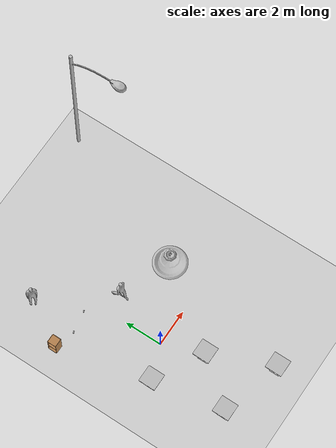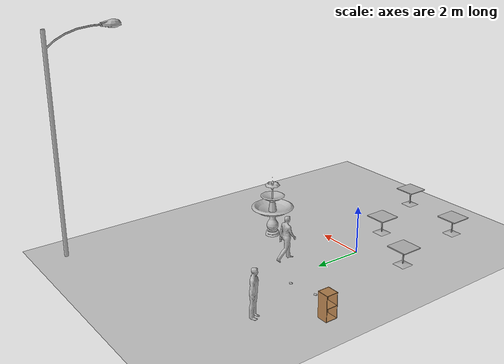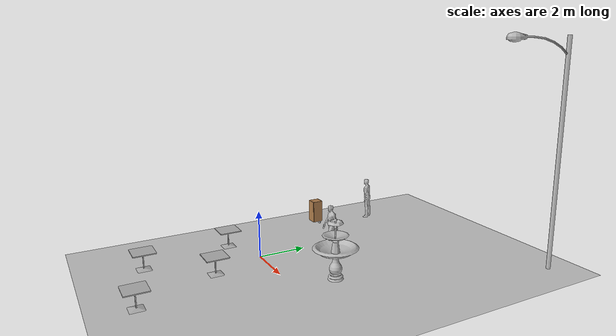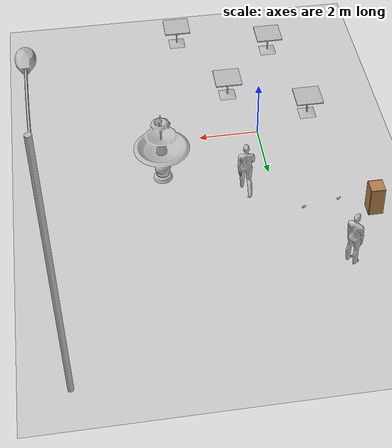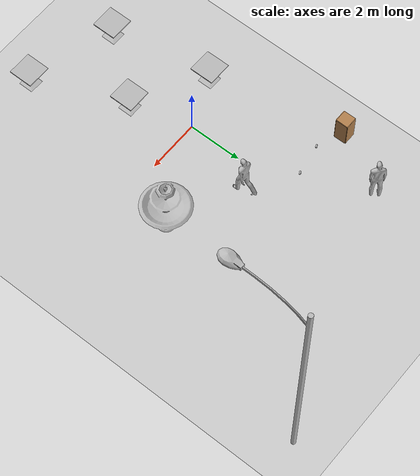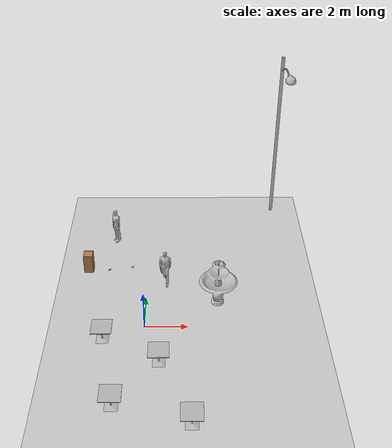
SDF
<sdf version="1.6">
 <world name="default">
  <light name="sun" type="directional">
   <pose>0 0 10 0 -0 0</pose>
   <diffuse>0.8 0.8 0.8 1</diffuse>
   <specular>0.2 0.2 0.2 1</specular>
   <attenuation>
    <range>1000</range>
    <constant>0.9</constant>
    <linear>0.01</linear>
    <quadratic>0.001</quadratic>
   </attenuation>
   <direction>-0.5 0.1 -0.9</direction>
  </light>
  <model name="ground_plane">
   <static>1</static>
   <link name="link">
    <collision name="collision">
     <geometry><plane><normal>0 0 1</normal><size>100 100</size></plane></geometry>
     <surface>
      <contact><collide_bitmask>65535</collide_bitmask></contact>
      <friction><ode><mu>100</mu><mu2>50</mu2></ode></friction>
     </surface>
    </collision>
    <visual name="visual">
     <cast_shadows>0</cast_shadows>
     <geometry><plane><normal>0 0 1</normal><size>100 100</size></plane></geometry>
     <material>
      <script><uri>file://media/materials/scripts/gazebo.material</uri><name>Gazebo/Grey</name></script>
     </material>
    </visual>
   </link>
  </model>
  <gravity>0 0 -9.8</gravity>
  <magnetic_field>6e-06 2.3e-05 -4.2e-05</magnetic_field>
  <atmosphere type="adiabatic"/>
  <physics name="default_physics" default="0" type="ode">
   <max_step_size>0.001</max_step_size>
   <real_time_factor>1</real_time_factor>
   <real_time_update_rate>1000</real_time_update_rate>
  </physics>
  <scene><ambient>0.4 0.4 0.4 1</ambient><background>0.7 0.7 0.7 1</background><shadows>1</shadows></scene>
  <spherical_coordinates>
   <surface_model>EARTH_WGS84</surface_model>
   <latitude_deg>0</latitude_deg>
   <longitude_deg>0</longitude_deg>
   <elevation>0</elevation>
   <heading_deg>0</heading_deg>
  </spherical_coordinates>
  <model name="cafe_table">
   <static>1</static>
   <link name="link">
    <collision name="surface">
     <pose>0 0 0.755 0 -0 0</pose>
     <geometry><box><size>0.913 0.913 0.04</size></box></geometry>
    </collision>
    <collision name="column">
     <pose>0 0 0.37 0 -0 0</pose>
     <geometry><box><size>0.042 0.042 0.74</size></box></geometry>
    </collision>
    <collision name="base">
     <pose>0 0 0.02 0 -0 0</pose>
     <geometry><box><size>0.56 0.56 0.04</size></box></geometry>
    </collision>
    <visual name="visual">
     <geometry><mesh><uri>model://cafe_table/meshes/cafe_table.dae</uri></mesh></geometry>
    </visual>
   </link>
   <pose>-1.15696 -4.4995 0 0 -0 0</pose>
  </model>
  <model name="cafe_table_0">
   <static>1</static>
   <link name="link">
    <collision name="surface">
     <pose>0 0 0.755 0 -0 0</pose>
     <geometry><box><size>0.913 0.913 0.04</size></box></geometry>
    </collision>
    <collision name="column">
     <pose>0 0 0.37 0 -0 0</pose>
     <geometry><box><size>0.042 0.042 0.74</size></box></geometry>
    </collision>
    <collision name="base">
     <pose>0 0 0.02 0 -0 0</pose>
     <geometry><box><size>0.56 0.56 0.04</size></box></geometry>
    </collision>
    <visual name="visual">
     <geometry><mesh><uri>model://cafe_table/meshes/cafe_table.dae</uri></mesh></geometry>
    </visual>
   </link>
   <pose>0.709274 -2.1504 0 0 -0 0</pose>
  </model>
  <model name="cafe_table_1">
   <static>1</static>
   <link name="link">
    <collision name="surface">
     <pose>0 0 0.755 0 -0 0</pose>
     <geometry><box><size>0.913 0.913 0.04</size></box></geometry>
    </collision>
    <collision name="column">
     <pose>0 0 0.37 0 -0 0</pose>
     <geometry><box><size>0.042 0.042 0.74</size></box></geometry>
    </collision>
    <collision name="base">
     <pose>0 0 0.02 0 -0 0</pose>
     <geometry><box><size>0.56 0.56 0.04</size></box></geometry>
    </collision>
    <visual name="visual">
     <geometry><mesh><uri>model://cafe_table/meshes/cafe_table.dae</uri></mesh></geometry>
    </visual>
   </link>
   <pose>2.10526 -5.41865 0 0 -0 0</pose>
  </model>
  <model name="cabinet">
   <static>1</static>
   <link name="cabinet_bottom_plate">
    <inertial>
     <pose>0 0 -1 0 -0 0</pose>
     <inertia><ixx>2.05</ixx><ixy>0</ixy><ixz>0</ixz><iyy>2.05</iyy><iyz>0</iyz><izz>2.05</izz></inertia>
     <mass>25</mass>
    </inertial>
    <collision name="cabinet_bottom_plate_geom">
     <pose>0 0 0.01 0 -0 0</pose>
     <geometry><box><size>0.45 0.45 0.02</size></box></geometry>
    </collision>
    <visual name="cabinet_bottom_plate_geom_visual">
     <pose>0 0 0.01 0 -0 0</pose>
     <geometry><box><size>0.45 0.45 0.02</size></box></geometry>
     <material>
      <script><uri>file://media/materials/scripts/gazebo.material</uri><name>Gazebo/Wood</name></script>
     </material>
    </visual>
    <collision name="cabinet_bottom_plate_geom_cabinet_back_plate">
     <pose>0.235 0 0.51 0 -0 0</pose>
     <geometry><box><size>0.02 0.45 1.02</size></box></geometry>
    </collision>
    <visual name="cabinet_bottom_plate_geom_cabinet_back_plate_visual">
     <pose>0.235 0 0.51 0 -0 0</pose>
     <geometry><box><size>0.02 0.45 1.02</size></box></geometry>
     <material>
      <script><uri>file://media/materials/scripts/gazebo.material</uri><name>Gazebo/Wood</name></script>
     </material>
    </visual>
    <collision name="cabinet_bottom_plate_geom_cabinet_left_plate">
     <pose>0 0.235 0.51 0 -0 0</pose>
     <geometry><box><size>0.45 0.02 1.02</size></box></geometry>
    </collision>
    <visual name="cabinet_bottom_plate_geom_cabinet_left_plate_visual">
     <pose>0 0.235 0.51 0 -0 0</pose>
     <geometry><box><size>0.45 0.02 1.02</size></box></geometry>
     <material>
      <script><uri>file://media/materials/scripts/gazebo.material</uri><name>Gazebo/Wood</name></script>
     </material>
    </visual>
    <collision name="cabinet_bottom_plate_geom_cabinet_middle_plate">
     <pose>0 0 0.51 0 -0 0</pose>
     <geometry><box><size>0.45 0.45 0.02</size></box></geometry>
    </collision>
    <visual name="cabinet_bottom_plate_geom_cabinet_middle_plate_visual">
     <pose>0 0 0.51 0 -0 0</pose>
     <geometry><box><size>0.45 0.45 0.02</size></box></geometry>
     <material>
      <script><uri>file://media/materials/scripts/gazebo.material</uri><name>Gazebo/Wood</name></script>
     </material>
    </visual>
    <collision name="cabinet_bottom_plate_geom_cabinet_right_plate">
     <pose>0 -0.235 0.51 0 -0 0</pose>
     <geometry><box><size>0.45 0.02 1.02</size></box></geometry>
    </collision>
    <visual name="cabinet_bottom_plate_geom_cabinet_right_plate_visual">
     <pose>0 -0.235 0.51 0 -0 0</pose>
     <geometry><box><size>0.45 0.02 1.02</size></box></geometry>
     <material>
      <script><uri>file://media/materials/scripts/gazebo.material</uri><name>Gazebo/Wood</name></script>
     </material>
    </visual>
    <collision name="cabinet_bottom_plate_geom_cabinet_top_plate">
     <pose>0 0 1.01 0 -0 0</pose>
     <geometry><box><size>0.45 0.45 0.02</size></box></geometry>
    </collision>
    <visual name="cabinet_bottom_plate_geom_cabinet_top_plate_visual">
     <pose>0 0 1.01 0 -0 0</pose>
     <geometry><box><size>0.45 0.45 0.02</size></box></geometry>
     <material>
      <script><uri>file://media/materials/scripts/gazebo.material</uri><name>Gazebo/Wood</name></script>
     </material>
    </visual>
   </link>
   <pose>-2.9826 4.17743 0 0 -0 0</pose>
  </model>
  <model name="fountain">
   <static>1</static>
   <link name="link">
    <collision name="collision">
     <geometry><mesh><uri>model://fountain/meshes/fountain.dae</uri></mesh></geometry>
    </collision>
    <visual name="visual">
     <geometry><mesh><uri>model://fountain/meshes/fountain.dae</uri></mesh></geometry>
    </visual>
   </link>
   <pose>3.42378 1.70871 0 0 -0 0</pose>
  </model>
  <model name="person_standing">
   <link name="link">
    <inertial>
     <pose>0 -0.1 0.95 0 -0 0</pose>
     <mass>80</mass>
     <inertia><ixx>24.88</ixx><ixy>0</ixy><ixz>0</ixz><iyy>25.73</iyy><iyz>0</iyz><izz>2.48</izz></inertia>
    </inertial>
    <collision name="bottom">
     <pose>0 -0.1 0.01 0 -0 0</pose>
     <geometry><box><size>0.5 0.35 0.02</size></box></geometry>
    </collision>
    <collision name="person">
     <pose>0 0 0.02 0.04 -0 0</pose>
     <geometry><mesh><uri>model://person_standing/meshes/standing.dae</uri></mesh></geometry>
    </collision>
    <visual name="visual">
     <pose>0 0 0.02 0.04 -0 0</pose>
     <geometry><mesh><uri>model://person_standing/meshes/standing.dae</uri></mesh></geometry>
    </visual>
   </link>
   <pose>-1.65566 6.42965 0.1898 1e-06 1e-06 -0.892378</pose>
  </model>
  <model name="person_walking">
   <link name="link">
    <inertial>
     <pose>0 0 0.95 0 -0 0</pose>
     <mass>80</mass>
     <inertia><ixx>27.82</ixx><ixy>0</ixy><ixz>0</ixz><iyy>24.88</iyy><iyz>0</iyz><izz>4.57</izz></inertia>
    </inertial>
    <collision name="bottom">
     <pose>0 0 0.01 0 -0 0</pose>
     <geometry><box><size>0.35 0.75 0.02</size></box></geometry>
    </collision>
    <collision name="person">
     <pose>0 0 -0.02 0 -0 0</pose>
     <geometry><mesh><uri>model://person_walking/meshes/walking.dae</uri></mesh></geometry>
    </collision>
    <visual name="visual">
     <pose>0 0 -0.02 0 -0 0</pose>
     <geometry><mesh><uri>model://person_walking/meshes/walking.dae</uri></mesh></geometry>
    </visual>
   </link>
   <pose>0.913503 2.95581 0.189801 -1e-06 1e-06 -0.102846</pose>
  </model>
  <model name="Lamp Post">
   <static>1</static>
   <link name="link">
    <collision name="collision">
     <geometry><mesh><uri>model://lamp_post/meshes/lamp_post.dae</uri><scale>3 3 3</scale></mesh></geometry>
    </collision>
    <visual name="visual">
     <geometry><mesh><uri>model://lamp_post/meshes/lamp_post.dae</uri><scale>3 3 3</scale></mesh></geometry>
    </visual>
   </link>
   <pose>6.81745 9.56043 0 0 -0 0</pose>
  </model>
  <model name="cafe_table_2">
   <static>1</static>
   <link name="link">
    <collision name="surface">
     <pose>0 0 0.755 0 -0 0</pose>
     <geometry><box><size>0.913 0.913 0.04</size></box></geometry>
    </collision>
    <collision name="column">
     <pose>0 0 0.37 0 -0 0</pose>
     <geometry><box><size>0.042 0.042 0.74</size></box></geometry>
    </collision>
    <collision name="base">
     <pose>0 0 0.02 0 -0 0</pose>
     <geometry><box><size>0.56 0.56 0.04</size></box></geometry>
    </collision>
    <visual name="visual">
     <geometry><mesh><uri>model://cafe_table/meshes/cafe_table.dae</uri></mesh></geometry>
    </visual>
   </link>
   <pose>-1.85823 -0.741595 0 0 -0 0</pose>
  </model>
  <model name="coke_can">
   <link name="link">
    <inertial>
     <pose>-0.01 -0.012 0.15 0 -0 0</pose>
     <mass>0.39</mass>
     <inertia><ixx>0.00058</ixx><ixy>0</ixy><ixz>0</ixz><iyy>0.00058</iyy><iyz>0</iyz><izz>0.00019</izz></inertia>
    </inertial>
    <collision name="collision">
     <pose>0 0 -0.46 0 -0 0</pose>
     <geometry><mesh><uri>model://coke_can/meshes/coke_can.dae</uri></mesh></geometry>
     <surface>
      <friction><ode><mu>1</mu><mu2>1</mu2></ode></friction>
      <contact><ode><kp>1e+07</kp><kd>1</kd><min_depth>0.001</min_depth><max_vel>0.1</max_vel></ode></contact>
     </surface>
    </collision>
    <visual name="visual">
     <pose>0 0 -0.46 0 -0 0</pose>
     <geometry><mesh><uri>model://coke_can/meshes/coke_can.dae</uri></mesh></geometry>
    </visual>
   </link>
   <pose>-2.10323 3.71648 0.289009 1.55826 -1.27527 -1.06714</pose>
  </model>
  <model name="coke_can_0">
   <link name="link">
    <inertial>
     <pose>-0.01 -0.012 0.15 0 -0 0</pose>
     <mass>0.39</mass>
     <inertia><ixx>0.00058</ixx><ixy>0</ixy><ixz>0</ixz><iyy>0.00058</iyy><iyz>0</iyz><izz>0.00019</izz></inertia>
    </inertial>
    <collision name="collision">
     <pose>0 0 -0.46 0 -0 0</pose>
     <geometry><mesh><uri>model://coke_can/meshes/coke_can.dae</uri></mesh></geometry>
     <surface>
      <friction><ode><mu>1</mu><mu2>1</mu2></ode></friction>
      <contact><ode><kp>1e+07</kp><kd>1</kd><min_depth>0.001</min_depth><max_vel>0.1</max_vel></ode></contact>
     </surface>
    </collision>
    <visual name="visual">
     <pose>0 0 -0.46 0 -0 0</pose>
     <geometry><mesh><uri>model://coke_can/meshes/coke_can.dae</uri></mesh></geometry>
    </visual>
   </link>
   <pose>-0.944181 3.91897 0.289011 1.55854 -1.27544 -1.06741</pose>
  </model>
 </world>
</sdf>
